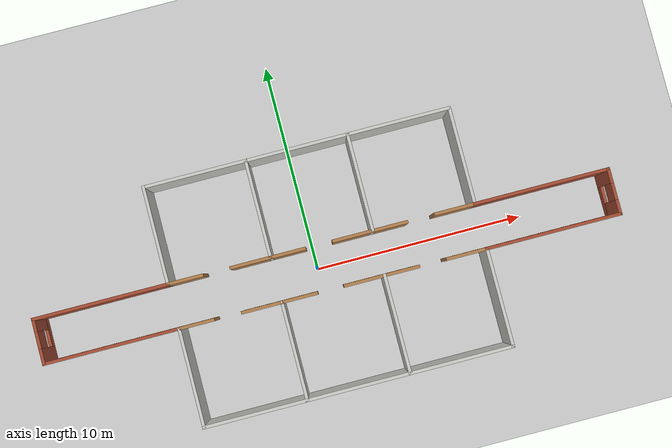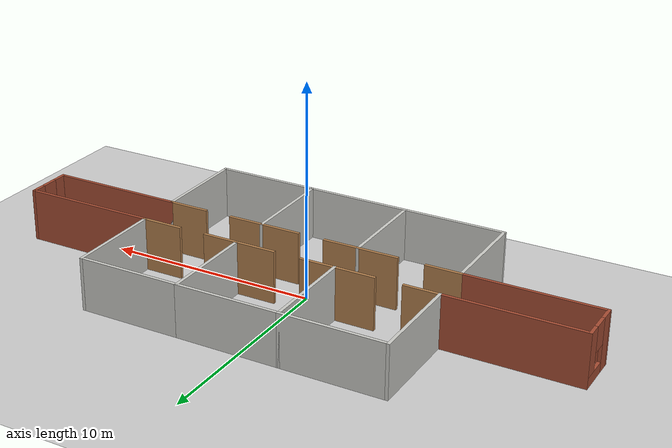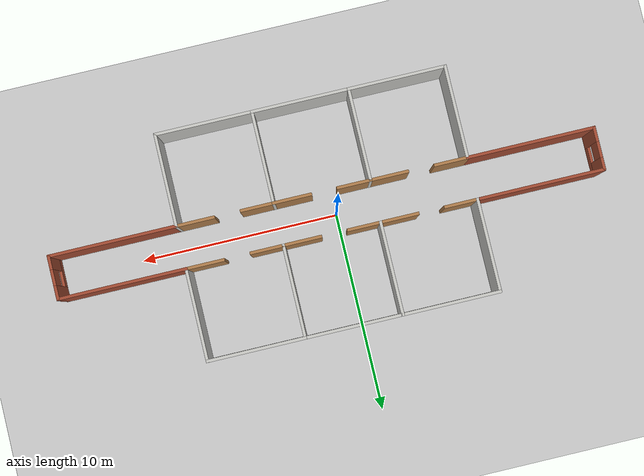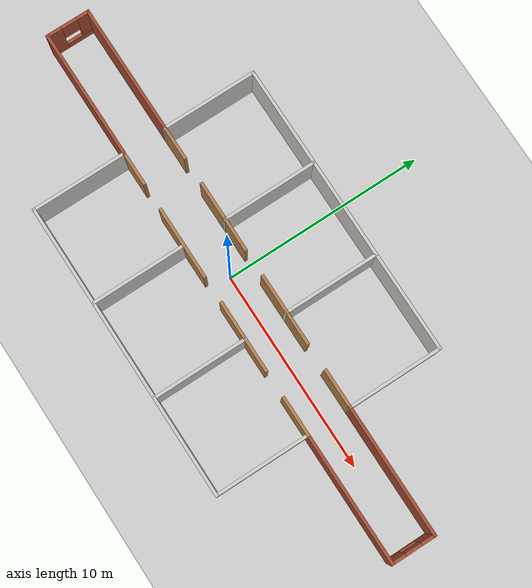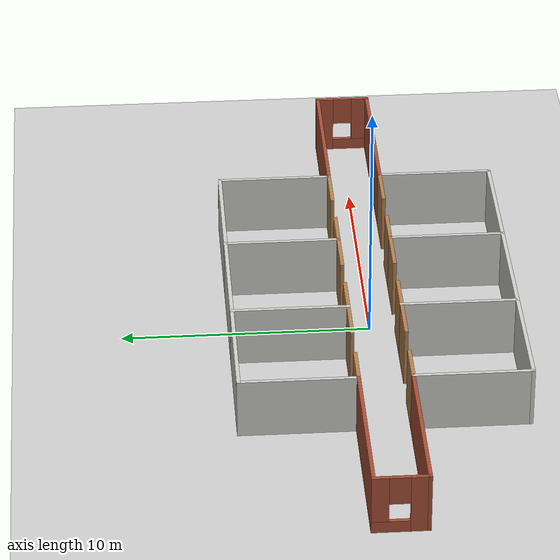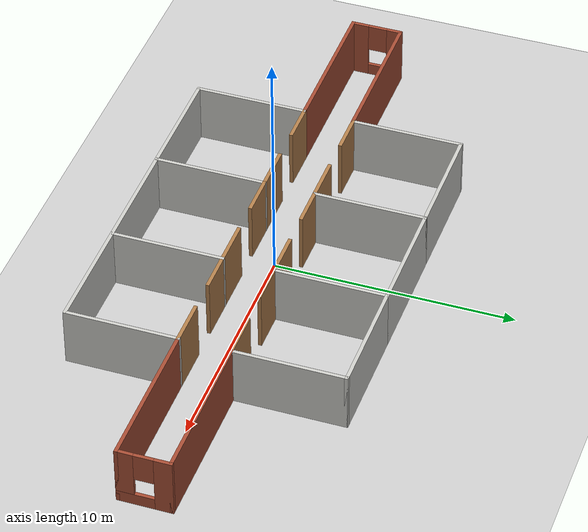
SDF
<?xml version='1.0'?>
<sdf version='1.7'>
  <world name="b2">
    <include>
      <uri>model://sun</uri>
    </include>
    <include>
      <uri>model://ground_plane</uri>
    </include>

    <model name='B3'>
      <pose>0.478846 -0.024923 0 0 -0 0</pose>
      <link name='Wall_0'>
        <collision name='Wall_0_Collision'>
          <geometry>
            <box>
              <size>4.75 0.15 2.5</size>
            </box>
          </geometry>
          <pose>0 0 1.25 0 -0 0</pose>
        </collision>
        <visual name='Wall_0_Visual'>
          <pose>0 0 1.25 0 -0 0</pose>
          <geometry>
            <box>
              <size>4.75 0.15 2.5</size>
            </box>
          </geometry>
          <material>
            <script>
              <uri>file://media/materials/scripts/gazebo.material</uri>
              <name>Gazebo/CeilingTiled</name>
            </script>
            <ambient>1 1 1 1</ambient>
          </material>
          <meta>
            <layer>0</layer>
          </meta>
        </visual>
        <pose>-2.425 -3.35874 0 0 -0 -1.5708</pose>
      </link>
      <link name='Wall_1'>
        <collision name='Wall_1_Collision'>
          <geometry>
            <box>
              <size>5 0.15 2.5</size>
            </box>
          </geometry>
          <pose>0 0 1.25 0 -0 0</pose>
        </collision>
        <visual name='Wall_1_Visual'>
          <pose>0 0 1.25 0 -0 0</pose>
          <geometry>
            <box>
              <size>5 0.15 2.5</size>
            </box>
          </geometry>
          <material>
            <script>
              <uri>file://media/materials/scripts/gazebo.material</uri>
              <name>Gazebo/CeilingTiled</name>
            </script>
            <ambient>1 1 1 1</ambient>
          </material>
          <meta>
            <layer>0</layer>
          </meta>
        </visual>
        <pose>-0 -5.65874 0 0 -0 0</pose>
      </link>
      <link name='Wall_10'>
        <collision name='Wall_10_Collision'>
          <geometry>
            <box>
              <size>2 0.15 2.5</size>
            </box>
          </geometry>
          <pose>0 0 1.25 0 -0 0</pose>
        </collision>
        <visual name='Wall_10_Visual'>
          <pose>0 0 1.25 0 -0 0</pose>
          <geometry>
            <box>
              <size>2 0.15 2.5</size>
            </box>
          </geometry>
          <material>
            <script>
              <uri>file://media/materials/scripts/gazebo.material</uri>
              <name>Gazebo/Wood</name>
            </script>
            <ambient>1 1 1 1</ambient>
          </material>
          <meta>
            <layer>0</layer>
          </meta>
        </visual>
        <pose>6.35 -1.05875 0 0 -0 3.14159</pose>
      </link>
      <link name='Wall_12'>
        <collision name='Wall_12_Collision'>
          <geometry>
            <box>
              <size>1.75 0.15 2.5</size>
            </box>
          </geometry>
          <pose>0 0 1.25 0 -0 0</pose>
        </collision>
        <visual name='Wall_12_Visual'>
          <pose>0 0 1.25 0 -0 0</pose>
          <geometry>
            <box>
              <size>1.75 0.15 2.5</size>
            </box>
          </geometry>
          <material>
            <script>
              <uri>file://media/materials/scripts/gazebo.material</uri>
              <name>Gazebo/Wood</name>
            </script>
            <ambient>1 1 1 1</ambient>
          </material>
          <meta>
            <layer>0</layer>
          </meta>
        </visual>
        <pose>3.225 -1.05875 0 0 -0 0</pose>
      </link>
      <link name='Wall_14'>
        <collision name='Wall_14_Collision'>
          <geometry>
            <box>
              <size>5 0.15 2.5</size>
            </box>
          </geometry>
          <pose>0 0 1.25 0 -0 0</pose>
        </collision>
        <visual name='Wall_14_Visual'>
          <pose>0 0 1.25 0 -0 0</pose>
          <geometry>
            <box>
              <size>5 0.15 2.5</size>
            </box>
          </geometry>
          <material>
            <script>
              <uri>file://media/materials/scripts/gazebo.material</uri>
              <name>Gazebo/CeilingTiled</name>
            </script>
            <ambient>1 1 1 1</ambient>
          </material>
          <meta>
            <layer>0</layer>
          </meta>
        </visual>
        <pose>-4.85 -5.65874 0 0 -0 3.14159</pose>
      </link>
      <link name='Wall_15'>
        <collision name='Wall_15_Collision'>
          <geometry>
            <box>
              <size>4.75 0.15 2.5</size>
            </box>
          </geometry>
          <pose>0 0 1.25 0 -0 0</pose>
        </collision>
        <visual name='Wall_15_Visual'>
          <pose>0 0 1.25 0 -0 0</pose>
          <geometry>
            <box>
              <size>4.75 0.15 2.5</size>
            </box>
          </geometry>
          <material>
            <script>
              <uri>file://media/materials/scripts/gazebo.material</uri>
              <name>Gazebo/CeilingTiled</name>
            </script>
            <ambient>1 1 1 1</ambient>
          </material>
          <meta>
            <layer>0</layer>
          </meta>
        </visual>
        <pose>-7.275 -3.35874 0 0 -0 1.5708</pose>
      </link>
      <link name='Wall_16'>
        <collision name='Wall_16_Collision'>
          <geometry>
            <box>
              <size>1.75 0.15 2.5</size>
            </box>
          </geometry>
          <pose>0 0 1.25 0 -0 0</pose>
        </collision>
        <visual name='Wall_16_Visual'>
          <pose>0 0 1.25 0 -0 0</pose>
          <geometry>
            <box>
              <size>1.75 0.15 2.5</size>
            </box>
          </geometry>
          <material>
            <script>
              <uri>file://media/materials/scripts/gazebo.material</uri>
              <name>Gazebo/Wood</name>
            </script>
            <ambient>1 1 1 1</ambient>
          </material>
          <meta>
            <layer>0</layer>
          </meta>
        </visual>
        <pose>-6.475 -1.04126 0 0 -0 0</pose>
      </link>
      <link name='Wall_18'>
        <collision name='Wall_18_Collision'>
          <geometry>
            <box>
              <size>2 0.15 2.5</size>
            </box>
          </geometry>
          <pose>0 0 1.25 0 -0 0</pose>
        </collision>
        <visual name='Wall_18_Visual'>
          <pose>0 0 1.25 0 -0 0</pose>
          <geometry>
            <box>
              <size>2 0.15 2.5</size>
            </box>
          </geometry>
          <material>
            <script>
              <uri>file://media/materials/scripts/gazebo.material</uri>
              <name>Gazebo/Wood</name>
            </script>
            <ambient>1 1 1 1</ambient>
          </material>
          <meta>
            <layer>0</layer>
          </meta>
        </visual>
        <pose>-3.35 -1.05875 0 0 -0 3.14159</pose>
      </link>
      <link name='Wall_2'>
        <collision name='Wall_2_Collision'>
          <geometry>
            <box>
              <size>4.75 0.15 2.5</size>
            </box>
          </geometry>
          <pose>0 0 1.25 0 -0 0</pose>
        </collision>
        <visual name='Wall_2_Visual'>
          <pose>0 0 1.25 0 -0 0</pose>
          <geometry>
            <box>
              <size>4.75 0.15 2.5</size>
            </box>
          </geometry>
          <material>
            <script>
              <uri>file://media/materials/scripts/gazebo.material</uri>
              <name>Gazebo/CeilingTiled</name>
            </script>
            <ambient>1 1 1 1</ambient>
          </material>
          <meta>
            <layer>0</layer>
          </meta>
        </visual>
        <pose>2.425 -3.35874 0 0 -0 1.5708</pose>
      </link>
      <link name='Wall_21'>
        <collision name='Wall_21_Collision'>
          <geometry>
            <box>
              <size>4.75 0.15 2.5</size>
            </box>
          </geometry>
          <pose>0 0 1.25 0 -0 0</pose>
        </collision>
        <visual name='Wall_21_Visual'>
          <pose>0 0 1.25 0 -0 0</pose>
          <geometry>
            <box>
              <size>4.75 0.15 2.5</size>
            </box>
          </geometry>
          <material>
            <script>
              <uri>file://media/materials/scripts/gazebo.material</uri>
              <name>Gazebo/CeilingTiled</name>
            </script>
            <ambient>1 1 1 1</ambient>
          </material>
          <meta>
            <layer>0</layer>
          </meta>
        </visual>
        <pose>-7.275 3.35874 0 0 -0 1.5708</pose>
      </link>
      <link name='Wall_22'>
        <collision name='Wall_22_Collision'>
          <geometry>
            <box>
              <size>5 0.15 2.5</size>
            </box>
          </geometry>
          <pose>0 0 1.25 0 -0 0</pose>
        </collision>
        <visual name='Wall_22_Visual'>
          <pose>0 0 1.25 0 -0 0</pose>
          <geometry>
            <box>
              <size>5 0.15 2.5</size>
            </box>
          </geometry>
          <material>
            <script>
              <uri>file://media/materials/scripts/gazebo.material</uri>
              <name>Gazebo/CeilingTiled</name>
            </script>
            <ambient>1 1 1 1</ambient>
          </material>
          <meta>
            <layer>0</layer>
          </meta>
        </visual>
        <pose>-4.85 5.65874 0 0 -0 0</pose>
      </link>
      <link name='Wall_23'>
        <collision name='Wall_23_Collision'>
          <geometry>
            <box>
              <size>4.75 0.15 2.5</size>
            </box>
          </geometry>
          <pose>0 0 1.25 0 -0 0</pose>
        </collision>
        <visual name='Wall_23_Visual'>
          <pose>0 0 1.25 0 -0 0</pose>
          <geometry>
            <box>
              <size>4.75 0.15 2.5</size>
            </box>
          </geometry>
          <material>
            <script>
              <uri>file://media/materials/scripts/gazebo.material</uri>
              <name>Gazebo/CeilingTiled</name>
            </script>
            <ambient>1 1 1 1</ambient>
          </material>
          <meta>
            <layer>0</layer>
          </meta>
        </visual>
        <pose>-2.425 3.35874 0 0 -0 -1.5708</pose>
      </link>
      <link name='Wall_24'>
        <collision name='Wall_24_Collision'>
          <geometry>
            <box>
              <size>2 0.15 2.5</size>
            </box>
          </geometry>
          <pose>0 0 1.25 0 -0 0</pose>
        </collision>
        <visual name='Wall_24_Visual'>
          <pose>0 0 1.25 0 -0 0</pose>
          <geometry>
            <box>
              <size>2 0.15 2.5</size>
            </box>
          </geometry>
          <material>
            <script>
              <uri>file://media/materials/scripts/gazebo.material</uri>
              <name>Gazebo/Wood</name>
            </script>
            <ambient>1 1 1 1</ambient>
          </material>
          <meta>
            <layer>0</layer>
          </meta>
        </visual>
        <pose>-3.35 1.05875 0 0 -0 3.14159</pose>
      </link>
      <link name='Wall_26'>
        <collision name='Wall_26_Collision'>
          <geometry>
            <box>
              <size>1.75 0.15 2.5</size>
            </box>
          </geometry>
          <pose>0 0 1.25 0 -0 0</pose>
        </collision>
        <visual name='Wall_26_Visual'>
          <pose>0 0 1.25 0 -0 0</pose>
          <geometry>
            <box>
              <size>1.75 0.15 2.5</size>
            </box>
          </geometry>
          <material>
            <script>
              <uri>file://media/materials/scripts/gazebo.material</uri>
              <name>Gazebo/Wood</name>
            </script>
            <ambient>1 1 1 1</ambient>
          </material>
          <meta>
            <layer>0</layer>
          </meta>
        </visual>
        <pose>-6.475 1.05875 0 0 -0 0</pose>
      </link>
      <link name='Wall_3'>
        <collision name='Wall_3_Collision'>
          <geometry>
            <box>
              <size>2 0.15 2.5</size>
            </box>
          </geometry>
          <pose>0 0 1.25 0 -0 0</pose>
        </collision>
        <visual name='Wall_3_Visual'>
          <pose>0 0 1.25 0 -0 0</pose>
          <geometry>
            <box>
              <size>2 0.15 2.5</size>
            </box>
          </geometry>
          <material>
            <script>
              <uri>file://media/materials/scripts/gazebo.material</uri>
              <name>Gazebo/Wood</name>
            </script>
            <ambient>1 1 1 1</ambient>
          </material>
          <meta>
            <layer>0</layer>
          </meta>
        </visual>
        <pose>1.5 -1.05875 0 0 -0 3.14159</pose>
      </link>
      <link name='Wall_30'>
        <collision name='Wall_30_Collision'>
          <geometry>
            <box>
              <size>6.5 0.15 2.5</size>
            </box>
          </geometry>
          <pose>0 0 1.25 0 -0 0</pose>
        </collision>
        <visual name='Wall_30_Visual'>
          <pose>0 0 1.25 0 -0 0</pose>
          <geometry>
            <box>
              <size>6.5 0.15 2.5</size>
            </box>
          </geometry>
          <material>
            <script>
              <uri>file://media/materials/scripts/gazebo.material</uri>
              <name>Gazebo/Bricks</name>
            </script>
            <ambient>1 1 1 1</ambient>
          </material>
          <meta>
            <layer>0</layer>
          </meta>
        </visual>
        <pose>-10.45 -1.04126 0 0 -0 3.14159</pose>
      </link>
      <link name='Wall_31'>
        <pose>-13.625 0.008745 0 0 -0 1.5708</pose>
        <visual name='Wall_31_Visual_0'>
          <pose>-0.734224 0 1.25 0 -0 0</pose>
          <geometry>
            <box>
              <size>0.781551 0.15 2.5</size>
            </box>
          </geometry>
          <material>
            <script>
              <uri>file://media/materials/scripts/gazebo.material</uri>
              <name>Gazebo/Bricks</name>
            </script>
            <ambient>1 1 1 1</ambient>
          </material>
          <meta>
            <layer>0</layer>
          </meta>
        </visual>
        <collision name='Wall_31_Collision_0'>
          <geometry>
            <box>
              <size>0.781551 0.15 2.5</size>
            </box>
          </geometry>
          <pose>-0.734224 0 1.25 0 -0 0</pose>
        </collision>
        <visual name='Wall_31_Visual_1'>
          <pose>0.390776 0 0.25 0 -0 0</pose>
          <geometry>
            <box>
              <size>1.46845 0.15 0.5</size>
            </box>
          </geometry>
          <material>
            <script>
              <uri>file://media/materials/scripts/gazebo.material</uri>
              <name>Gazebo/Bricks</name>
            </script>
            <ambient>1 1 1 1</ambient>
          </material>
          <meta>
            <layer>0</layer>
          </meta>
        </visual>
        <collision name='Wall_31_Collision_1'>
          <geometry>
            <box>
              <size>1.46845 0.15 0.5</size>
            </box>
          </geometry>
          <pose>0.390776 0 0.25 0 -0 0</pose>
        </collision>
        <visual name='Wall_31_Visual_2'>
          <pose>0.790776 0 1.5 0 -0 0</pose>
          <geometry>
            <box>
              <size>0.668449 0.15 2</size>
            </box>
          </geometry>
          <material>
            <script>
              <uri>file://media/materials/scripts/gazebo.material</uri>
              <name>Gazebo/Bricks</name>
            </script>
            <ambient>1 1 1 1</ambient>
          </material>
          <meta>
            <layer>0</layer>
          </meta>
        </visual>
        <collision name='Wall_31_Collision_2'>
          <geometry>
            <box>
              <size>0.668449 0.15 2</size>
            </box>
          </geometry>
          <pose>0.790776 0 1.5 0 -0 0</pose>
        </collision>
        <visual name='Wall_31_Visual_3'>
          <pose>0.056551 0 1.9 0 -0 0</pose>
          <geometry>
            <box>
              <size>0.8 0.15 1.2</size>
            </box>
          </geometry>
          <material>
            <script>
              <uri>file://media/materials/scripts/gazebo.material</uri>
              <name>Gazebo/Bricks</name>
            </script>
            <ambient>1 1 1 1</ambient>
          </material>
          <meta>
            <layer>0</layer>
          </meta>
        </visual>
        <collision name='Wall_31_Collision_3'>
          <geometry>
            <box>
              <size>0.8 0.15 1.2</size>
            </box>
          </geometry>
          <pose>0.056551 0 1.9 0 -0 0</pose>
        </collision>
      </link>
      <link name='Wall_32'>
        <collision name='Wall_32_Collision'>
          <geometry>
            <box>
              <size>6.5 0.15 2.5</size>
            </box>
          </geometry>
          <pose>0 0 1.25 0 -0 0</pose>
        </collision>
        <visual name='Wall_32_Visual'>
          <pose>0 0 1.25 0 -0 0</pose>
          <geometry>
            <box>
              <size>6.5 0.15 2.5</size>
            </box>
          </geometry>
          <material>
            <script>
              <uri>file://media/materials/scripts/gazebo.material</uri>
              <name>Gazebo/Bricks</name>
            </script>
            <ambient>1 1 1 1</ambient>
          </material>
          <meta>
            <layer>0</layer>
          </meta>
        </visual>
        <pose>-10.45 1.05875 0 0 -0 0</pose>
      </link>
      <link name='Wall_34'>
        <collision name='Wall_34_Collision'>
          <geometry>
            <box>
              <size>5 0.15 2.5</size>
            </box>
          </geometry>
          <pose>0 0 1.25 0 -0 0</pose>
        </collision>
        <visual name='Wall_34_Visual'>
          <pose>0 0 1.25 0 -0 0</pose>
          <geometry>
            <box>
              <size>5 0.15 2.5</size>
            </box>
          </geometry>
          <material>
            <script>
              <uri>file://media/materials/scripts/gazebo.material</uri>
              <name>Gazebo/CeilingTiled</name>
            </script>
            <ambient>1 1 1 1</ambient>
          </material>
          <meta>
            <layer>0</layer>
          </meta>
        </visual>
        <pose>-0 5.65874 0 0 -0 0</pose>
      </link>
      <link name='Wall_35'>
        <collision name='Wall_35_Collision'>
          <geometry>
            <box>
              <size>4.75 0.15 2.5</size>
            </box>
          </geometry>
          <pose>0 0 1.25 0 -0 0</pose>
        </collision>
        <visual name='Wall_35_Visual'>
          <pose>0 0 1.25 0 -0 0</pose>
          <geometry>
            <box>
              <size>4.75 0.15 2.5</size>
            </box>
          </geometry>
          <material>
            <script>
              <uri>file://media/materials/scripts/gazebo.material</uri>
              <name>Gazebo/CeilingTiled</name>
            </script>
            <ambient>1 1 1 1</ambient>
          </material>
          <meta>
            <layer>0</layer>
          </meta>
        </visual>
        <pose>2.425 3.35874 0 0 -0 -1.5708</pose>
      </link>
      <link name='Wall_36'>
        <collision name='Wall_36_Collision'>
          <geometry>
            <box>
              <size>2 0.15 2.5</size>
            </box>
          </geometry>
          <pose>0 0 1.25 0 -0 0</pose>
        </collision>
        <visual name='Wall_36_Visual'>
          <pose>0 0 1.25 0 -0 0</pose>
          <geometry>
            <box>
              <size>2 0.15 2.5</size>
            </box>
          </geometry>
          <material>
            <script>
              <uri>file://media/materials/scripts/gazebo.material</uri>
              <name>Gazebo/Wood</name>
            </script>
            <ambient>1 1 1 1</ambient>
          </material>
          <meta>
            <layer>0</layer>
          </meta>
        </visual>
        <pose>1.5 1.05875 0 0 -0 3.14159</pose>
      </link>
      <link name='Wall_38'>
        <collision name='Wall_38_Collision'>
          <geometry>
            <box>
              <size>5.00002 0.15 2.5</size>
            </box>
          </geometry>
          <pose>0 0 1.25 0 -0 0</pose>
        </collision>
        <visual name='Wall_38_Visual'>
          <pose>0 0 1.25 0 -0 0</pose>
          <geometry>
            <box>
              <size>5.00002 0.15 2.5</size>
            </box>
          </geometry>
          <material>
            <script>
              <uri>file://media/materials/scripts/gazebo.material</uri>
              <name>Gazebo/CeilingTiled</name>
            </script>
            <ambient>1 1 1 1</ambient>
          </material>
          <meta>
            <layer>0</layer>
          </meta>
        </visual>
        <pose>4.85 5.65874 0 0 -0 0</pose>
      </link>
      <link name='Wall_39'>
        <collision name='Wall_39_Collision'>
          <geometry>
            <box>
              <size>4.73479 0.15 2.5</size>
            </box>
          </geometry>
          <pose>0 0 1.25 0 -0 0</pose>
        </collision>
        <visual name='Wall_39_Visual'>
          <pose>0 0 1.25 0 -0 0</pose>
          <geometry>
            <box>
              <size>4.73479 0.15 2.5</size>
            </box>
          </geometry>
          <material>
            <script>
              <uri>file://media/materials/scripts/gazebo.material</uri>
              <name>Gazebo/CeilingTiled</name>
            </script>
            <ambient>1 1 1 1</ambient>
          </material>
          <meta>
            <layer>0</layer>
          </meta>
        </visual>
        <pose>7.275 3.36635 0 0 -0 -1.5708</pose>
      </link>
      <link name='Wall_40'>
        <collision name='Wall_40_Collision'>
          <geometry>
            <box>
              <size>2 0.15 2.5</size>
            </box>
          </geometry>
          <pose>0 0 1.25 0 -0 0</pose>
        </collision>
        <visual name='Wall_40_Visual'>
          <pose>0 0 1.25 0 -0 0</pose>
          <geometry>
            <box>
              <size>2 0.15 2.5</size>
            </box>
          </geometry>
          <material>
            <script>
              <uri>file://media/materials/scripts/gazebo.material</uri>
              <name>Gazebo/Wood</name>
            </script>
            <ambient>1 1 1 1</ambient>
          </material>
          <meta>
            <layer>0</layer>
          </meta>
        </visual>
        <pose>6.35 1.07395 0 0 -0 3.14159</pose>
      </link>
      <link name='Wall_42'>
        <collision name='Wall_42_Collision'>
          <geometry>
            <box>
              <size>1.75 0.15 2.5</size>
            </box>
          </geometry>
          <pose>0 0 1.25 0 -0 0</pose>
        </collision>
        <visual name='Wall_42_Visual'>
          <pose>0 0 1.25 0 -0 0</pose>
          <geometry>
            <box>
              <size>1.75 0.15 2.5</size>
            </box>
          </geometry>
          <material>
            <script>
              <uri>file://media/materials/scripts/gazebo.material</uri>
              <name>Gazebo/Wood</name>
            </script>
            <ambient>1 1 1 1</ambient>
          </material>
          <meta>
            <layer>0</layer>
          </meta>
        </visual>
        <pose>3.225 1.05875 0 0 -0 0</pose>
      </link>
      <link name='Wall_44'>
        <collision name='Wall_44_Collision'>
          <geometry>
            <box>
              <size>1.75 0.15 2.5</size>
            </box>
          </geometry>
          <pose>0 0 1.25 0 -0 0</pose>
        </collision>
        <visual name='Wall_44_Visual'>
          <pose>0 0 1.25 0 -0 0</pose>
          <geometry>
            <box>
              <size>1.75 0.15 2.5</size>
            </box>
          </geometry>
          <material>
            <script>
              <uri>file://media/materials/scripts/gazebo.material</uri>
              <name>Gazebo/Wood</name>
            </script>
            <ambient>1 1 1 1</ambient>
          </material>
          <meta>
            <layer>0</layer>
          </meta>
        </visual>
        <pose>-1.625 1.05875 0 0 -0 0</pose>
      </link>
      <link name='Wall_46'>
        <collision name='Wall_46_Collision'>
          <geometry>
            <box>
              <size>6.5 0.15 2.5</size>
            </box>
          </geometry>
          <pose>0 0 1.25 0 -0 0</pose>
        </collision>
        <visual name='Wall_46_Visual'>
          <pose>0 0 1.25 0 -0 0</pose>
          <geometry>
            <box>
              <size>6.5 0.15 2.5</size>
            </box>
          </geometry>
          <material>
            <script>
              <uri>file://media/materials/scripts/gazebo.material</uri>
              <name>Gazebo/Bricks</name>
            </script>
            <ambient>1 1 1 1</ambient>
          </material>
          <meta>
            <layer>0</layer>
          </meta>
        </visual>
        <pose>10.45 1.07395 0 0 -0 0</pose>
      </link>
      <link name='Wall_47'>
        <pose>13.625 0.007604 0 0 -0 -1.5708</pose>
        <visual name='Wall_47_Visual_0'>
          <pose>-0.77004 0 1.25 0 -0 0</pose>
          <geometry>
            <box>
              <size>0.742618 0.15 2.5</size>
            </box>
          </geometry>
          <material>
            <script>
              <uri>file://media/materials/scripts/gazebo.material</uri>
              <name>Gazebo/Bricks</name>
            </script>
            <ambient>1 1 1 1</ambient>
          </material>
          <meta>
            <layer>0</layer>
          </meta>
        </visual>
        <collision name='Wall_47_Collision_0'>
          <geometry>
            <box>
              <size>0.742618 0.15 2.5</size>
            </box>
          </geometry>
          <pose>-0.77004 0 1.25 0 -0 0</pose>
        </collision>
        <visual name='Wall_47_Visual_1'>
          <pose>0.371309 0 0.25 0 -0 0</pose>
          <geometry>
            <box>
              <size>1.54008 0.15 0.5</size>
            </box>
          </geometry>
          <material>
            <script>
              <uri>file://media/materials/scripts/gazebo.material</uri>
              <name>Gazebo/Bricks</name>
            </script>
            <ambient>1 1 1 1</ambient>
          </material>
          <meta>
            <layer>0</layer>
          </meta>
        </visual>
        <collision name='Wall_47_Collision_1'>
          <geometry>
            <box>
              <size>1.54008 0.15 0.5</size>
            </box>
          </geometry>
          <pose>0.371309 0 0.25 0 -0 0</pose>
        </collision>
        <visual name='Wall_47_Visual_2'>
          <pose>0.771309 0 1.5 0 -0 0</pose>
          <geometry>
            <box>
              <size>0.740081 0.15 2</size>
            </box>
          </geometry>
          <material>
            <script>
              <uri>file://media/materials/scripts/gazebo.material</uri>
              <name>Gazebo/Bricks</name>
            </script>
            <ambient>1 1 1 1</ambient>
          </material>
          <meta>
            <layer>0</layer>
          </meta>
        </visual>
        <collision name='Wall_47_Collision_2'>
          <geometry>
            <box>
              <size>0.740081 0.15 2</size>
            </box>
          </geometry>
          <pose>0.771309 0 1.5 0 -0 0</pose>
        </collision>
        <visual name='Wall_47_Visual_3'>
          <pose>0.001269 0 1.9 0 -0 0</pose>
          <geometry>
            <box>
              <size>0.8 0.15 1.2</size>
            </box>
          </geometry>
          <material>
            <script>
              <uri>file://media/materials/scripts/gazebo.material</uri>
              <name>Gazebo/Bricks</name>
            </script>
            <ambient>1 1 1 1</ambient>
          </material>
          <meta>
            <layer>0</layer>
          </meta>
        </visual>
        <collision name='Wall_47_Collision_3'>
          <geometry>
            <box>
              <size>0.8 0.15 1.2</size>
            </box>
          </geometry>
          <pose>0.001269 0 1.9 0 -0 0</pose>
        </collision>
      </link>
      <link name='Wall_48'>
        <collision name='Wall_48_Collision'>
          <geometry>
            <box>
              <size>6.5 0.15 2.5</size>
            </box>
          </geometry>
          <pose>0 0 1.25 0 -0 0</pose>
        </collision>
        <visual name='Wall_48_Visual'>
          <pose>0 0 1.25 0 -0 0</pose>
          <geometry>
            <box>
              <size>6.5 0.15 2.5</size>
            </box>
          </geometry>
          <material>
            <script>
              <uri>file://media/materials/scripts/gazebo.material</uri>
              <name>Gazebo/Bricks</name>
            </script>
            <ambient>1 1 1 1</ambient>
          </material>
          <meta>
            <layer>0</layer>
          </meta>
        </visual>
        <pose>10.45 -1.05875 0 0 -0 3.14159</pose>
      </link>
      <link name='Wall_5'>
        <collision name='Wall_5_Collision'>
          <geometry>
            <box>
              <size>1.76749 0.15 2.5</size>
            </box>
          </geometry>
          <pose>0 0 1.25 0 -0 0</pose>
        </collision>
        <visual name='Wall_5_Visual'>
          <pose>0 0 1.25 0 -0 0</pose>
          <geometry>
            <box>
              <size>1.76749 0.15 2.5</size>
            </box>
          </geometry>
          <material>
            <script>
              <uri>file://media/materials/scripts/gazebo.material</uri>
              <name>Gazebo/Wood</name>
            </script>
            <ambient>1 1 1 1</ambient>
          </material>
          <meta>
            <layer>0</layer>
          </meta>
        </visual>
        <pose>-1.61625 -1.05875 0 0 -0 3.14159</pose>
      </link>
      <link name='Wall_8'>
        <collision name='Wall_8_Collision'>
          <geometry>
            <box>
              <size>5 0.15 2.5</size>
            </box>
          </geometry>
          <pose>0 0 1.25 0 -0 0</pose>
        </collision>
        <visual name='Wall_8_Visual'>
          <pose>0 0 1.25 0 -0 0</pose>
          <geometry>
            <box>
              <size>5 0.15 2.5</size>
            </box>
          </geometry>
          <material>
            <script>
              <uri>file://media/materials/scripts/gazebo.material</uri>
              <name>Gazebo/CeilingTiled</name>
            </script>
            <ambient>1 1 1 1</ambient>
          </material>
          <meta>
            <layer>0</layer>
          </meta>
        </visual>
        <pose>4.85 -5.65874 0 0 -0 0</pose>
      </link>
      <link name='Wall_9'>
        <collision name='Wall_9_Collision'>
          <geometry>
            <box>
              <size>4.75 0.15 2.5</size>
            </box>
          </geometry>
          <pose>0 0 1.25 0 -0 0</pose>
        </collision>
        <visual name='Wall_9_Visual'>
          <pose>0 0 1.25 0 -0 0</pose>
          <geometry>
            <box>
              <size>4.75 0.15 2.5</size>
            </box>
          </geometry>
          <material>
            <script>
              <uri>file://media/materials/scripts/gazebo.material</uri>
              <name>Gazebo/CeilingTiled</name>
            </script>
            <ambient>1 1 1 1</ambient>
          </material>
          <meta>
            <layer>0</layer>
          </meta>
        </visual>
        <pose>7.275 -3.35874 0 0 -0 1.5708</pose>
      </link>
      <static>1</static>
    </model>
  </world>
</sdf>
